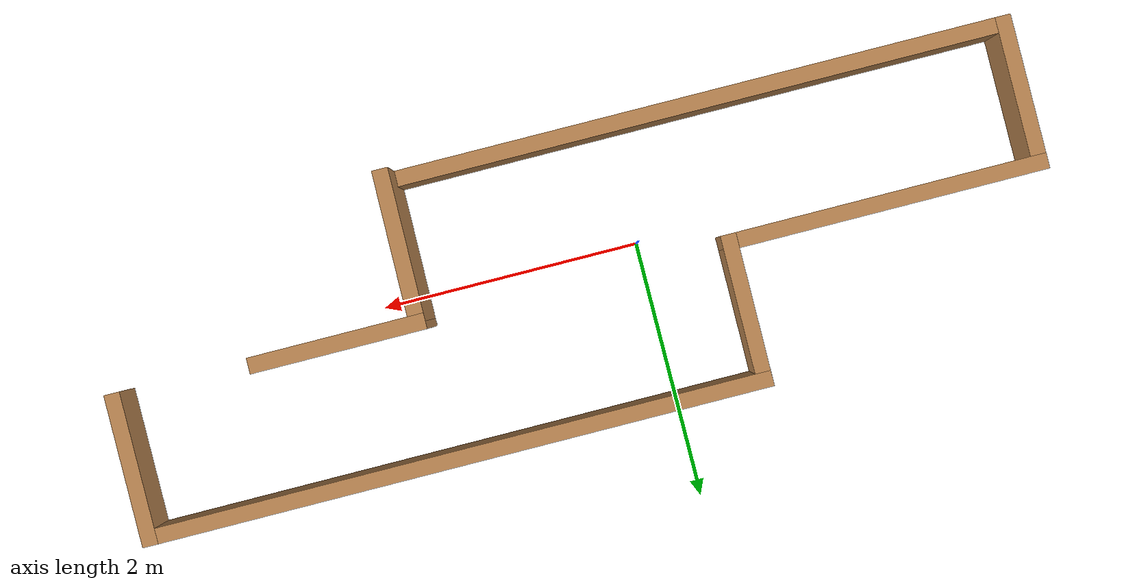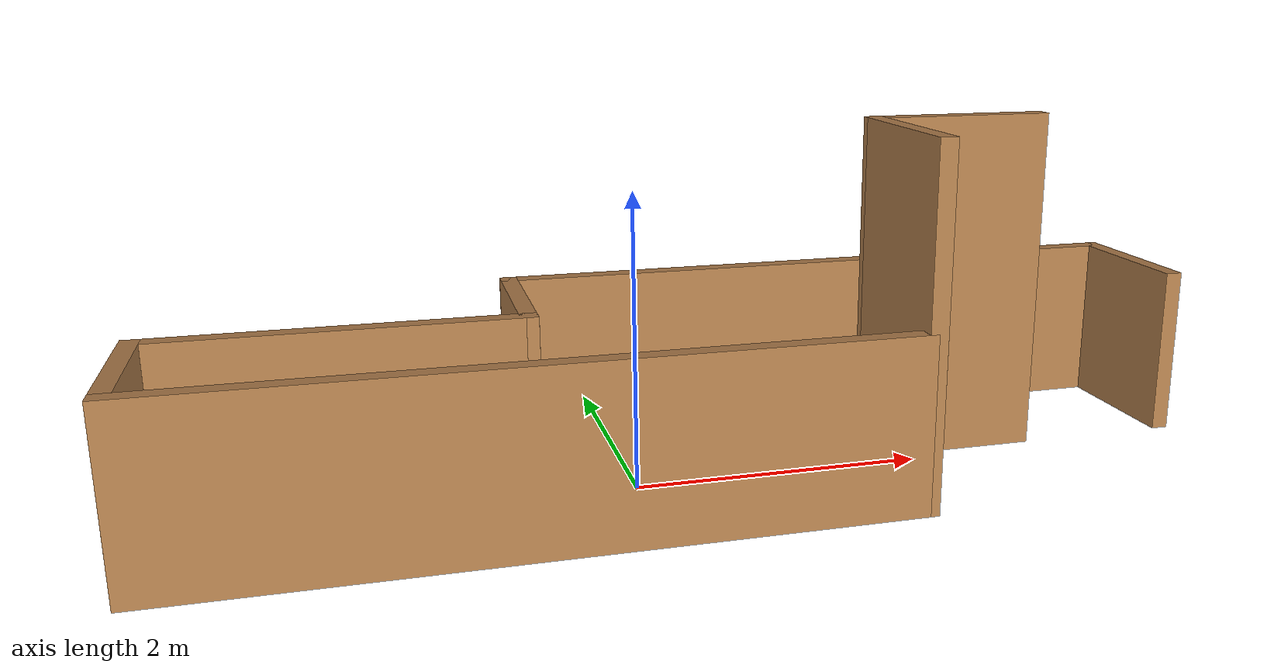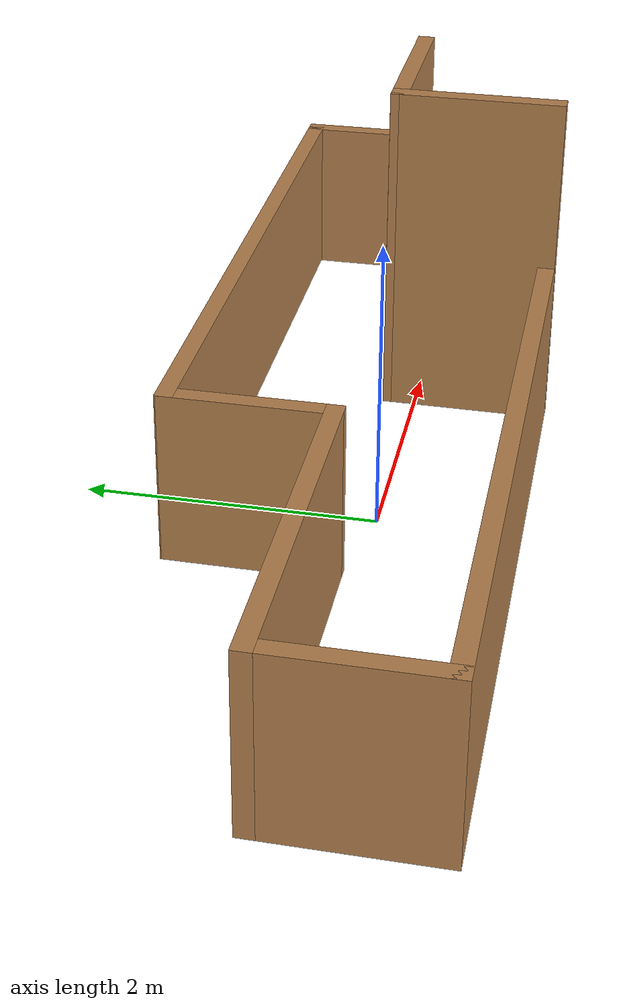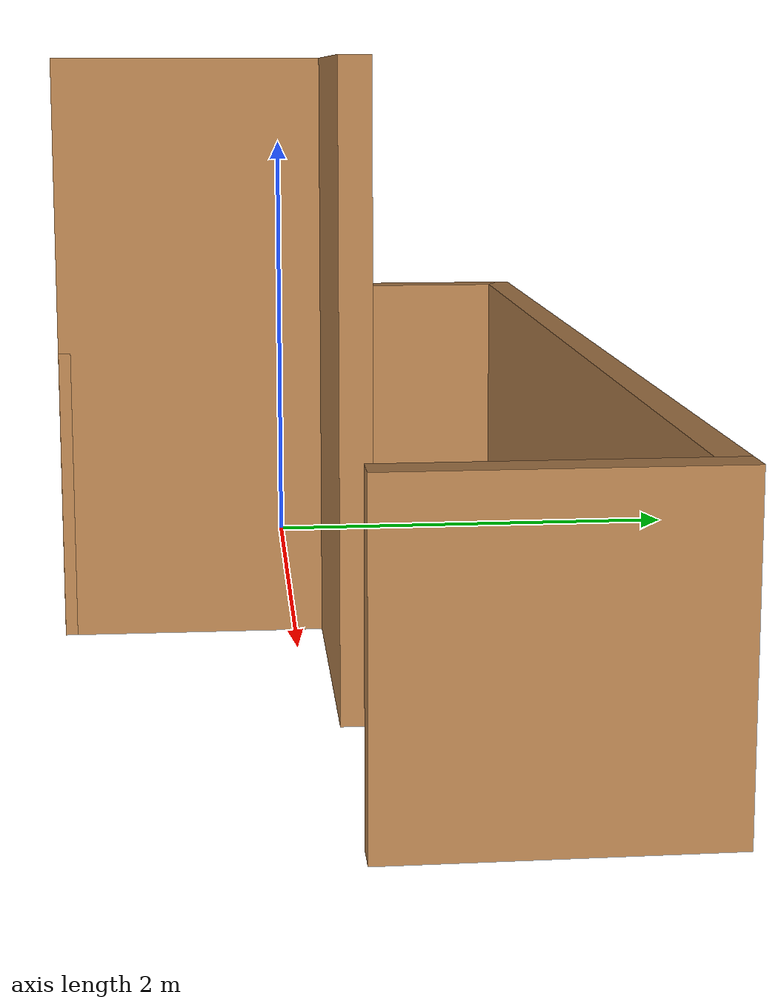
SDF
<?xml version='1.0'?>
<sdf version='1.6'>
  <model name='high_containment_walls'>
    <pose frame=''>0.518421 0.162314 0 0 -0 0</pose>
    <link name='Wall_1'>
      <collision name='Wall_1_Collision'>
        <geometry>
          <box>
            <size>1.17301 0.12 1.2</size>
          </box>
        </geometry>
        <pose frame=''>0 0 0.6 0 -0 0</pose>
      </collision>
      <visual name='Wall_1_Visual'>
        <pose frame=''>0 0 0.6 0 -0 0</pose>
        <geometry>
          <box>
            <size>1.17301 0.12 1.2</size>
          </box>
        </geometry>
        <material>
          <script>
            <uri>file://media/materials/scripts/gazebo.material</uri>
            <name>Gazebo/Wood</name>
          </script>
          <ambient>1 1 1 1</ambient>
        </material>
        <meta>
          <layer>0</layer>
        </meta>
      </visual>
      <pose frame=''>3.56858 0.541186 0 0 -0 1.5708</pose>
    </link>
    <link name='Wall_2'>
      <collision name='Wall_2_Collision'>
        <geometry>
          <box>
            <size>4.8647 0.12 1.2</size>
          </box>
        </geometry>
        <pose frame=''>0 0 0.6 0 -0 0</pose>
      </collision>
      <visual name='Wall_2_Visual'>
        <pose frame=''>0 0 0.6 0 -0 0</pose>
        <geometry>
          <box>
            <size>4.8647 0.12 1.2</size>
          </box>
        </geometry>
        <material>
          <script>
            <uri>file://media/materials/scripts/gazebo.material</uri>
            <name>Gazebo/Wood</name>
          </script>
          <ambient>1 1 1 1</ambient>
        </material>
        <meta>
          <layer>0</layer>
        </meta>
      </visual>
      <pose frame=''>1.19608 1.06769 0 0 -0 3.14159</pose>
    </link>
    <link name='Wall_3'>
      <collision name='Wall_3_Collision'>
        <geometry>
          <box>
            <size>1.18014 0.12 1.2</size>
          </box>
        </geometry>
        <pose frame=''>0 0 0.6 0 -0 0</pose>
      </collision>
      <visual name='Wall_3_Visual'>
        <pose frame=''>0 0 0.6 0 -0 0</pose>
        <geometry>
          <box>
            <size>1.18014 0.12 1.2</size>
          </box>
        </geometry>
        <material>
          <script>
            <uri>file://media/materials/scripts/gazebo.material</uri>
            <name>Gazebo/Wood</name>
          </script>
          <ambient>1 1 1 1</ambient>
        </material>
        <meta>
          <layer>0</layer>
        </meta>
      </visual>
      <pose frame=''>-1.17792 0.537686 0 0 -0 -1.57363</pose>
    </link>
    <link name='Wall_4'>
      <collision name='Wall_4_Collision'>
        <geometry>
          <box>
            <size>2.50927 0.12 1.2</size>
          </box>
        </geometry>
        <pose frame=''>0 0 0.6 0 -0 0</pose>
      </collision>
      <visual name='Wall_4_Visual'>
        <pose frame=''>0 0 0.6 0 -0 0</pose>
        <geometry>
          <box>
            <size>2.50927 0.12 1.2</size>
          </box>
        </geometry>
        <material>
          <script>
            <uri>file://media/materials/scripts/gazebo.material</uri>
            <name>Gazebo/Wood</name>
          </script>
          <ambient>1 1 1 1</ambient>
        </material>
        <meta>
          <layer>0</layer>
        </meta>
      </visual>
      <pose frame=''>-2.37392 0.007186 0 0 -0 -3.14117</pose>
    </link>
    <link name='Wall_5'>
      <collision name='Wall_5_Collision'>
        <geometry>
          <box>
            <size>1.18871 0.12 1.2</size>
          </box>
        </geometry>
        <pose frame=''>0 0 0.6 0 -0 0</pose>
      </collision>
      <visual name='Wall_5_Visual'>
        <pose frame=''>0 0 0.6 0 -0 0</pose>
        <geometry>
          <box>
            <size>1.18871 0.12 1.2</size>
          </box>
        </geometry>
        <material>
          <script>
            <uri>file://media/materials/scripts/gazebo.material</uri>
            <name>Gazebo/Wood</name>
          </script>
          <ambient>1 1 1 1</ambient>
        </material>
        <meta>
          <layer>0</layer>
        </meta>
      </visual>
      <pose frame=''>-3.56842 -0.527814 0 0 -0 -1.5708</pose>
    </link>
    <link name='Wall_6'>
      <collision name='Wall_6_Collision'>
        <geometry>
          <box>
            <size>4.8628 0.12 1.2</size>
          </box>
        </geometry>
        <pose frame=''>0 0 0.6 0 -0 0</pose>
      </collision>
      <visual name='Wall_6_Visual'>
        <pose frame=''>0 0 0.6 0 -0 0</pose>
        <geometry>
          <box>
            <size>4.8628 0.12 1.2</size>
          </box>
        </geometry>
        <material>
          <script>
            <uri>file://media/materials/scripts/gazebo.material</uri>
            <name>Gazebo/Wood</name>
          </script>
          <ambient>1 1 1 1</ambient>
        </material>
        <meta>
          <layer>0</layer>
        </meta>
      </visual>
      <pose frame=''>-1.19692 -1.06481 0 0 -0 -0.001054</pose>
    </link>
    <link name='Wall_8'>
      <collision name='Wall_8_Collision'>
        <geometry>
          <box>
            <size>1.315 0.12 2.4</size>
          </box>
        </geometry>
        <pose frame=''>0 0 1.2 0 -0 0</pose>
      </collision>
      <visual name='Wall_8_Visual'>
        <pose frame=''>0 0 1.2 0 -0 0</pose>
        <geometry>
          <box>
            <size>1.315 0.12 2.4</size>
          </box>
        </geometry>
        <material>
          <script>
            <uri>file://media/materials/scripts/gazebo.material</uri>
            <name>Gazebo/Wood</name>
          </script>
          <ambient>1 1 1 1</ambient>
        </material>
        <meta>
          <layer>0</layer>
        </meta>
      </visual>
      <pose frame=''>1.78308 0.010686 0 0 -0 3.14159</pose>
    </link>
    <link name='Wall_9'>
      <collision name='Wall_9_Collision'>
        <geometry>
          <box>
            <size>1.19806 0.12 2.4</size>
          </box>
        </geometry>
        <pose frame=''>0 0 1.2 0 -0 0</pose>
      </collision>
      <visual name='Wall_9_Visual'>
        <pose frame=''>0 0 1.2 0 -0 0</pose>
        <geometry>
          <box>
            <size>1.19806 0.12 2.4</size>
          </box>
        </geometry>
        <material>
          <script>
            <uri>file://media/materials/scripts/gazebo.material</uri>
            <name>Gazebo/Wood</name>
          </script>
          <ambient>1 1 1 1</ambient>
        </material>
        <meta>
          <layer>0</layer>
        </meta>
      </visual>
      <pose frame=''>1.18008 -0.528314 0 0 -0 -1.581</pose>
    </link>
    <static>1</static>
  </model>
</sdf>
